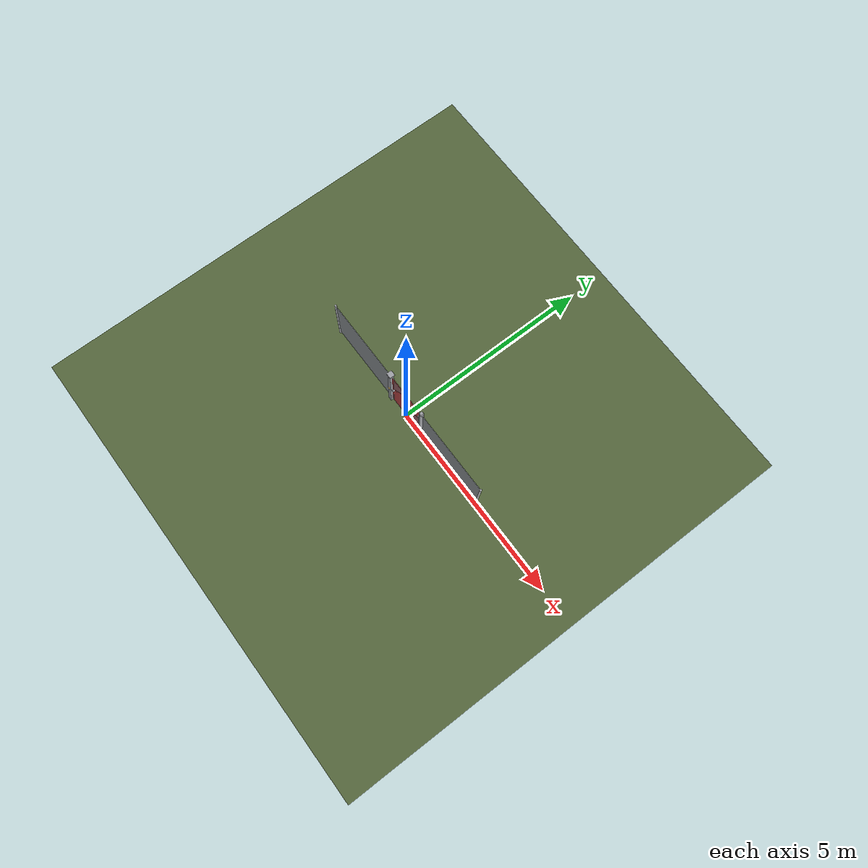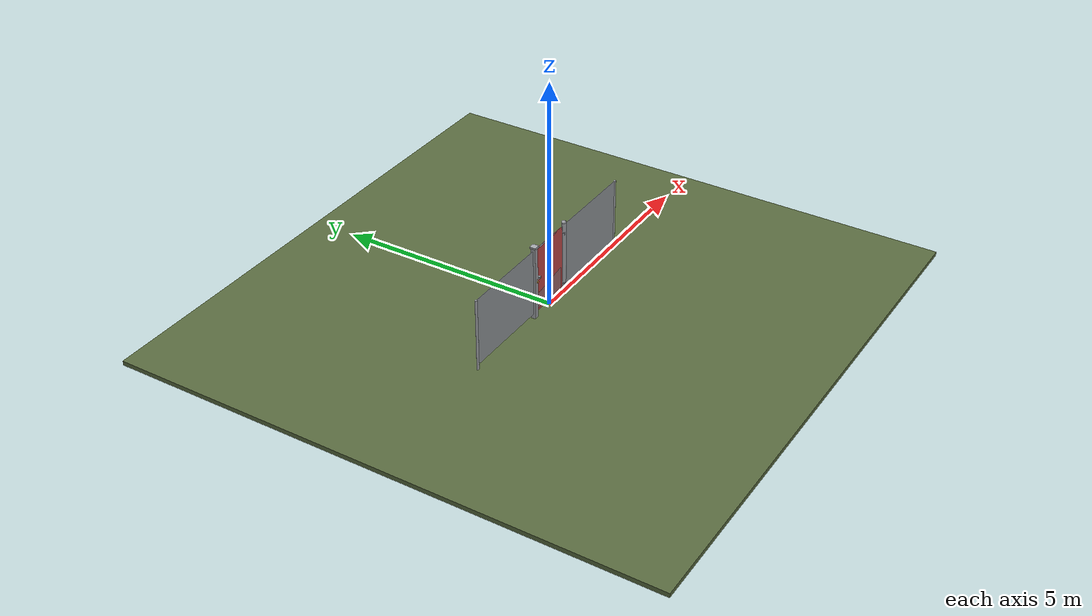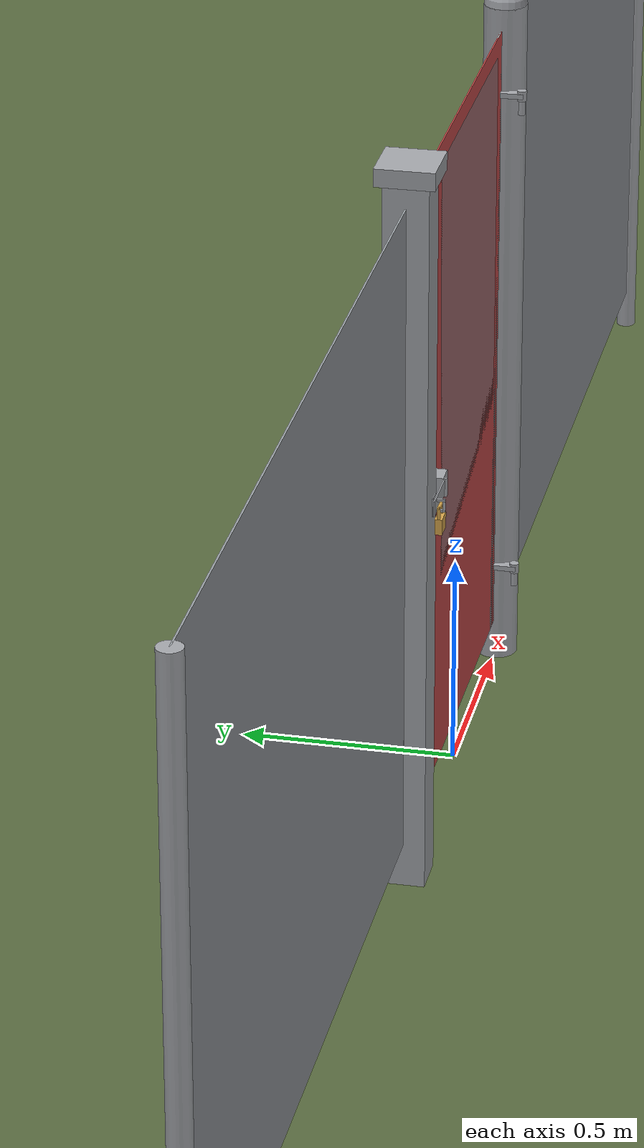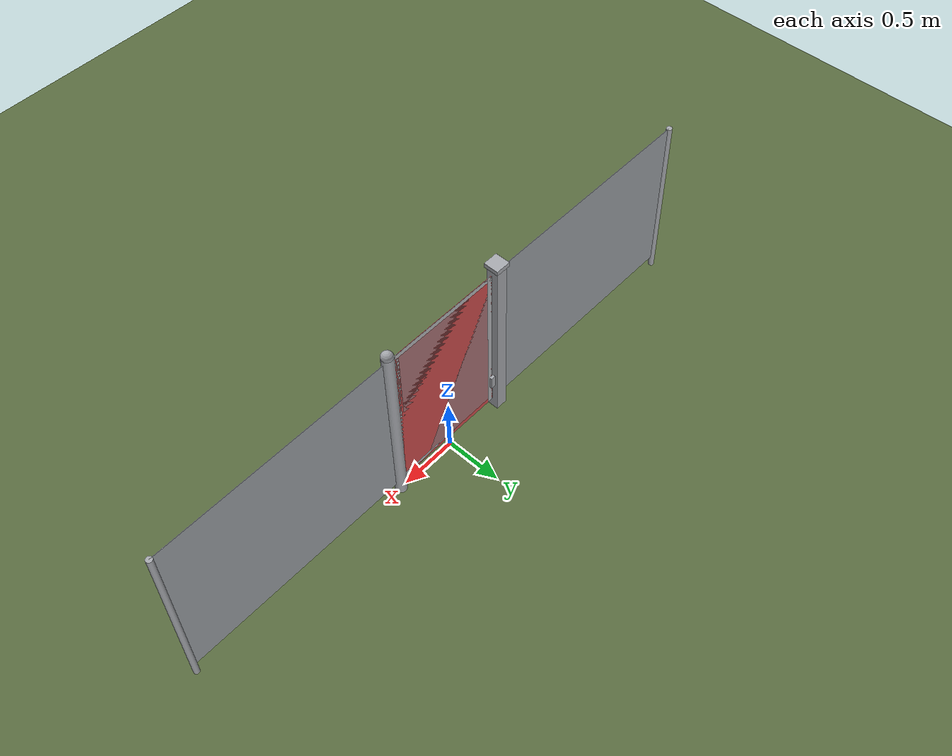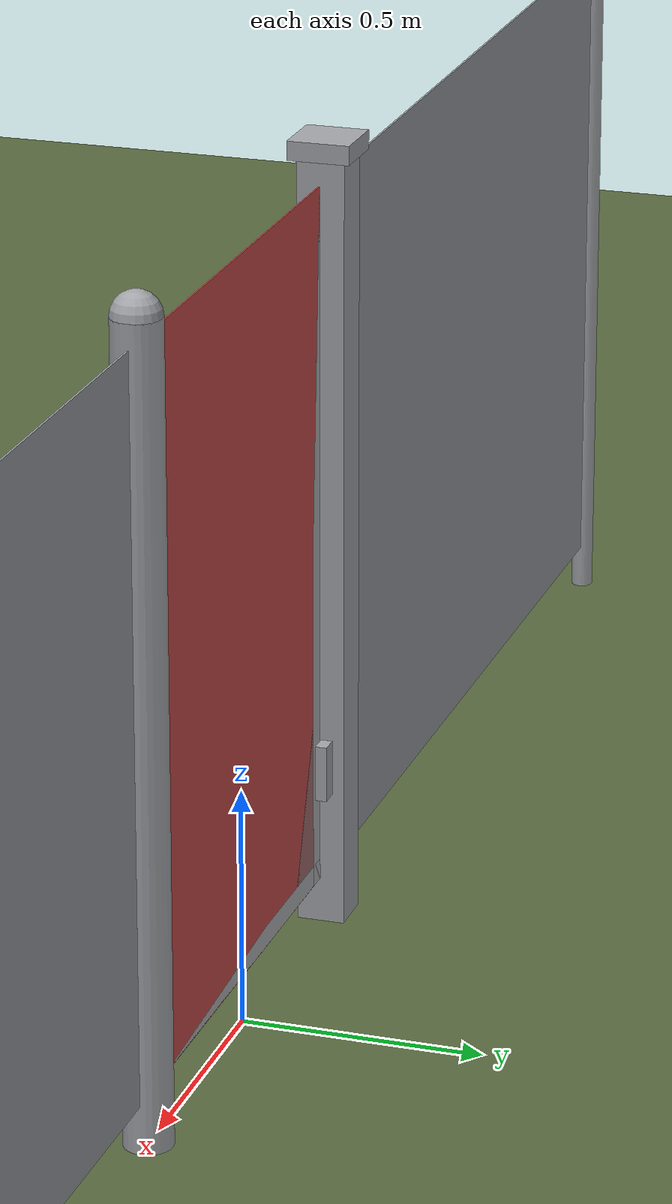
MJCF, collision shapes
<?xml version="1.0" ?>
<mujoco model="db0368_gate_swing_full">
  <compiler angle="radian" meshdir="../../hardware" texturedir="../../textures" autolimits="true" inertiafromgeom="false"/>
  <option timestep="0.002" integrator="implicitfast" cone="elliptic" impratio="10" noslip_iterations="3">
    <flag multiccd="enable"/>
  </option>
  <size memory="16M"/>
  <default>
    <geom condim="4" solref="0.005 1" solimp="0.95 0.99 0.001"/>
    <joint solreflimit="0.005 1" solimplimit="0.95 0.99 0.001"/>
    <tendon solreflimit="0.005 1"/>
    <equality solref="0.002 1"/>
  </default>
  <visual>
    <headlight ambient="0.4 0.4 0.4" diffuse="0.7 0.7 0.7" specular="0.2 0.2 0.2"/>
    <quality shadowsize="4096"/>
    <map znear="0.01" zfar="60"/>
  </visual>
  <asset>
    <mesh name="strap_hinge_3c1a7c1a5f" file="strap_hinge_3c1a7c1a5f.obj"/>
    <material name="mat_floor" rgba="0.35 0.42 0.25 1" specular="0.2" shininess="0.15" reflectance="0"/>
    <material name="mat_wall" rgba="0.78 0.76 0.7 1" specular="0.2" shininess="0.1" reflectance="0"/>
    <material name="mat_leaf" rgba="0.7 0.71 0.72 1" specular="0.74" shininess="0.5" reflectance="0.36"/>
    <material name="mat_mesh_infill" rgba="0.6 0.62 0.64 0.55" specular="0.68" shininess="0.3" reflectance="0.1"/>
    <material name="mat_hinge" rgba="0.65 0.66 0.68 1" specular="0.74" shininess="0.5" reflectance="0.36"/>
    <material name="mat_op_steel_galvanized" rgba="0.65 0.66 0.68 1" specular="0.74" shininess="0.5" reflectance="0.36"/>
    <material name="mat_padlock" rgba="0.85 0.66 0.3 1" specular="0.8" shininess="0.75" reflectance="0.4"/>
    <material name="mat_frame" rgba="0.65 0.66 0.68 1" specular="0.74" shininess="0.5" reflectance="0.36"/>
    <material name="mat_fence_mesh" rgba="0.6 0.62 0.64 0.5" specular="0.68" shininess="0.3" reflectance="0.1"/>
    <texture name="skybox" type="skybox" builtin="gradient" rgb1="0.6 0.7 0.85" rgb2="0.9 0.92 0.95" width="256" height="256"/>
  </asset>
  <worldbody>
    <light name="sun" pos="1.5 -2.5 4" dir="-0.3 0.5 -0.8" directional="true" diffuse="0.8 0.8 0.8" specular="0.3 0.3 0.3" castshadow="true"/>
    <light name="fill" pos="-1.5 2.5 3" dir="0.3 -0.5 -0.7" directional="true" diffuse="0.35 0.35 0.4" castshadow="false"/>
    <camera name="robot_view" pos="0 -2.05 1.334" xyaxes="1 0 0 0 0.26963 0.962964" fovy="52"/>
    <camera name="far_view" pos="0 2.05 1.334" xyaxes="-1 0 0 0 -0.26963 0.962964" fovy="52"/>
    <camera name="iso" pos="-1.558 -1.722 1.662" xyaxes="0.741536 -0.670913 0 0.242917 0.268487 0.932151" fovy="46"/>
    <camera name="detail_handle" pos="-0.356 -0.864 1.18" xyaxes="0.97561 0.219512 0 -0.070934 0.315262 0.94635" fovy="38"/>
    <geom name="floor" type="box" size="6 6 0.05" pos="0 0 -0.05" material="mat_floor" group="0" contype="1" conaffinity="1" friction="0.8 0.005 0.0001" density="2400"/>
    <geom name="hinge_pintle_0" type="cylinder" size="0.008 0.02" pos="0.503 -0.05 0.224" material="mat_hinge" group="1" contype="0" conaffinity="0" density="7850"/>
    <geom name="hinge_pintle_1" type="cylinder" size="0.008 0.02" pos="0.503 -0.05 1.424" material="mat_hinge" group="1" contype="0" conaffinity="0" density="7850"/>
    <geom name="leaf_staple_leg_n" type="box" size="0.003 0.0025 0.013" pos="-0.534 -0.063 0.9125" quat="0 0 -0.707107 0.707107" material="mat_op_steel_galvanized" group="0" contype="1" conaffinity="1" friction="0.6 0.005 0.0001" density="7800"/>
    <geom name="leaf_staple_leg_p" type="box" size="0.003 0.0025 0.013" pos="-0.534 -0.063 0.8875" quat="0 0 -0.707107 0.707107" material="mat_op_steel_galvanized" group="0" contype="1" conaffinity="1" friction="0.6 0.005 0.0001" density="7800"/>
    <geom name="leaf_staple_bridge" type="box" size="0.003 0.015 0.0025" pos="-0.534 -0.0735 0.9" quat="0 0 -0.707107 0.707107" material="mat_op_steel_galvanized" group="0" contype="1" conaffinity="1" friction="0.6 0.005 0.0001" density="7800"/>
    <geom name="leaf_staple_base" type="box" size="0.016 0.021 0.001" pos="-0.534 -0.051 0.9" quat="0 0 -0.707107 0.707107" material="mat_op_steel_galvanized" group="1" contype="0" conaffinity="0" density="7800"/>
    <geom name="leaf_padlock_shackle" type="capsule" size="0.004 0.016" pos="-0.534 -0.065 0.9" quat="0.707107 0 -0.707107 0" material="mat_padlock" group="1" contype="0" conaffinity="0" density="7850"/>
    <geom name="leaf_padlock_leg_a" type="capsule" size="0.004 0.012" pos="-0.518 -0.065 0.888" quat="0 1 0 0" material="mat_padlock" group="1" contype="0" conaffinity="0" density="7850"/>
    <geom name="leaf_padlock_leg_b" type="capsule" size="0.004 0.012" pos="-0.55 -0.065 0.888" quat="0 1 0 0" material="mat_padlock" group="1" contype="0" conaffinity="0" density="7850"/>
    <geom name="leaf_padlock_body" type="box" size="0.022 0.018 0.008" pos="-0.534 -0.065 0.858" quat="0 0 -0.707107 0.707107" material="mat_padlock" group="0" contype="1" conaffinity="1" friction="0.6 0.005 0.0001" density="7850"/>
    <geom name="post_hinge" type="cylinder" size="0.05 0.825" pos="0.556 0 0.825" material="mat_frame" group="0" contype="1" conaffinity="1" friction="0.6 0.005 0.0001" density="800"/>
    <geom name="post_hinge_cap" type="sphere" size="0.05" pos="0.556 0 1.65" material="mat_frame" group="1" contype="0" conaffinity="0" density="800"/>
    <geom name="post_latch" type="box" size="0.05 0.05 0.825" pos="-0.556 0 0.825" material="mat_frame" group="0" contype="1" conaffinity="1" friction="0.6 0.005 0.0001" density="800"/>
    <geom name="post_latch_cap" type="box" size="0.065 0.065 0.02" pos="-0.556 0 1.67" material="mat_frame" group="1" contype="0" conaffinity="0" density="800"/>
    <geom name="gate_stop" type="box" size="0.02 0.012 0.06" pos="-0.486 0.0135 0.35" material="mat_frame" group="0" contype="1" conaffinity="1" friction="0.6 0.005 0.0001" density="800"/>
    <geom name="fence_l" type="box" size="1 0.002 0.75" pos="-1.606 0 0.85" material="mat_fence_mesh" group="0" contype="1" conaffinity="1" friction="0.6 0.005 0.0001" density="100"/>
    <geom name="fence_post_l" type="cylinder" size="0.025 0.8" pos="-2.606 0 0.8" material="mat_frame" group="0" contype="1" conaffinity="1" friction="0.6 0.005 0.0001" density="7850"/>
    <geom name="fence_r" type="box" size="1 0.002 0.75" pos="1.606 0 0.85" material="mat_fence_mesh" group="0" contype="1" conaffinity="1" friction="0.6 0.005 0.0001" density="100"/>
    <geom name="fence_post_r" type="cylinder" size="0.025 0.8" pos="2.606 0 0.8" material="mat_frame" group="0" contype="1" conaffinity="1" friction="0.6 0.005 0.0001" density="7850"/>
    <geom name="gate_stop_strap_0" type="box" size="0.0505 0.01255 0.048" pos="-0.556 0.01055 0.35" material="mat_frame" group="1" contype="0" conaffinity="0" density="7850"/>
    <site name="approach_point" pos="0 -1.5 0" quat="1 0 0 0" size="0.05" rgba="0.2 0.9 0.2 0.5" group="4"/>
    <site name="goal_point" pos="0 1.5 0" quat="1 0 0 0" size="0.05" rgba="0.2 0.9 0.2 0.5" group="4"/>
    <site name="door_plane_center" pos="0 0 0.76" quat="1 0 0 0" size="0.02" rgba="0.2 0.9 0.2 0.5" group="4"/>
    <body name="leaf" pos="0.506 0 0">
      <inertial pos="-0.466129 -0.007312 0.857542" mass="5.26766" quat="-0.488945 0.486481 0.512818 0.511163" diaginertia="0.662222462 1.040756426 1.700779216"/>
      <joint name="leaf_hinge" type="hinge" axis="0 0 1" pos="-0.003 -0.05 0" limited="true" range="0 0.0015" damping="1.2709" frictionloss="0.145081" stiffness="5" springref="-0.8" armature="0.02"/>
      <geom name="leaf_slab_col" type="box" size="0.5 0.0015 0.75" pos="-0.503 0 0.85" material="mat_leaf" group="3" contype="1" conaffinity="1" rgba="0.8 0.3 0.3 0.25" friction="0.45 0.005 0.0001" density="1"/>
      <geom name="leaf_rail_b" type="box" size="0.5 0.0015 0.0225" pos="-0.503 0 0.1225" material="mat_leaf" group="1" contype="0" conaffinity="0" density="1"/>
      <geom name="leaf_rail_t" type="box" size="0.5 0.0015 0.0225" pos="-0.503 0 1.5775" material="mat_leaf" group="1" contype="0" conaffinity="0" density="1"/>
      <geom name="leaf_stile_h" type="box" size="0.0225 0.0015 0.75" pos="-0.0255 0 0.85" material="mat_leaf" group="1" contype="0" conaffinity="0" density="1"/>
      <geom name="leaf_stile_l" type="box" size="0.0225 0.0015 0.75" pos="-0.9805 0 0.85" material="mat_leaf" group="1" contype="0" conaffinity="0" density="1"/>
      <geom name="leaf_mesh" type="box" size="0.455 0.0015 0.705" pos="-0.503 0 0.85" material="mat_mesh_infill" group="1" contype="0" conaffinity="0" density="1"/>
      <geom name="hinge_strap_0" type="mesh" mesh="strap_hinge_3c1a7c1a5f" pos="-0.003 -0.0045 0.25" quat="0 0 0 1" material="mat_hinge" group="1" contype="0" conaffinity="0" density="7850"/>
      <geom name="hinge_strap_eye_0" type="cylinder" size="0.011 0.012" pos="-0.003 -0.05 0.25" material="mat_hinge" group="1" contype="0" conaffinity="0" density="7850"/>
      <geom name="hinge_strap_neck_0" type="box" size="0.012 0.02675 0.006" pos="-0.003 -0.02725 0.25" material="mat_hinge" group="1" contype="0" conaffinity="0" density="7850"/>
      <geom name="hinge_strap_1" type="mesh" mesh="strap_hinge_3c1a7c1a5f" pos="-0.003 -0.0045 1.45" quat="0 0 0 1" material="mat_hinge" group="1" contype="0" conaffinity="0" density="7850"/>
      <geom name="hinge_strap_eye_1" type="cylinder" size="0.011 0.012" pos="-0.003 -0.05 1.45" material="mat_hinge" group="1" contype="0" conaffinity="0" density="7850"/>
      <geom name="hinge_strap_neck_1" type="box" size="0.012 0.02675 0.006" pos="-0.003 -0.02725 1.45" material="mat_hinge" group="1" contype="0" conaffinity="0" density="7850"/>
      <geom name="leaf_hasp_plate" type="box" size="0.024 0.0215 0.02625" pos="-0.928 -0.02775 0.9" quat="0 0 -0.707107 0.707107" material="mat_op_steel_galvanized" group="1" contype="0" conaffinity="0" density="7800"/>
      <site name="leaf_edge_mid" pos="-1.003 0 0.75" quat="1 0 0 0" size="0.02" rgba="0.2 0.9 0.2 0.5" group="4"/>
      <body name="leaf_hasp" pos="-0.948 -0.054 0.9">
        <inertial pos="-0.046342 -0.001967 0" mass="0.11484" quat="0.005577 0.005577 0.707085 0.707085" diaginertia="0.000013089 0.000158235 0.000170826"/>
        <joint name="leaf_hasp_hinge" type="hinge" axis="0 0 1" limited="true" range="0 0.0015" damping="0.02" frictionloss="0.05" armature="0.005"/>
        <geom name="leaf_hasp_strap" type="box" size="0.057 0.0175 0.0015" pos="-0.057 -0.0015 0" quat="0 0 -0.707107 0.707107" material="mat_op_steel_galvanized" group="0" contype="1" conaffinity="1" friction="0.6 0.005 0.0001" density="7800"/>
        <geom name="leaf_hasp_knuckle" type="cylinder" size="0.0045 0.0215" pos="0 -0.004 0" material="mat_op_steel_galvanized" group="1" contype="0" conaffinity="0" density="7850"/>
        <site name="leaf_hasp_grip" pos="-0.094 -0.01 0" quat="1 0 0 0" size="0.01" rgba="0.2 0.9 0.2 0.5" group="4"/>
      </body>
    </body>
  </worldbody>
  <sensor>
    <jointpos name="leaf_hinge_pos" joint="leaf_hinge"/>
    <jointvel name="leaf_hinge_vel" joint="leaf_hinge"/>
    <jointpos name="leaf_hasp_hinge_pos" joint="leaf_hasp_hinge"/>
    <jointvel name="leaf_hasp_hinge_vel" joint="leaf_hasp_hinge"/>
  </sensor>
</mujoco>
